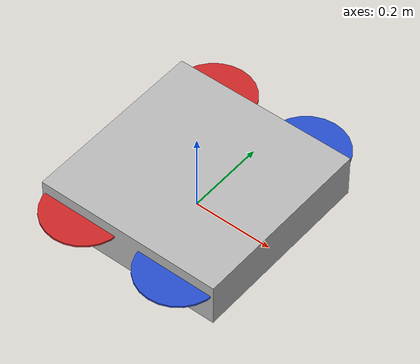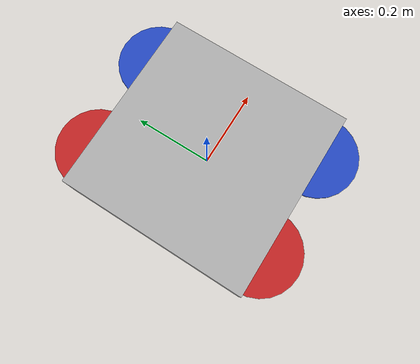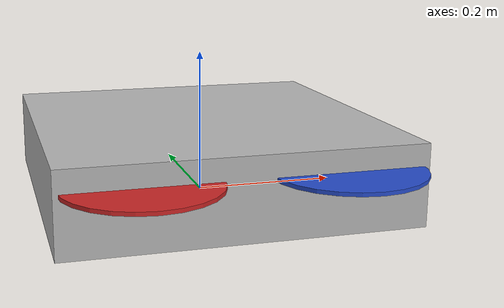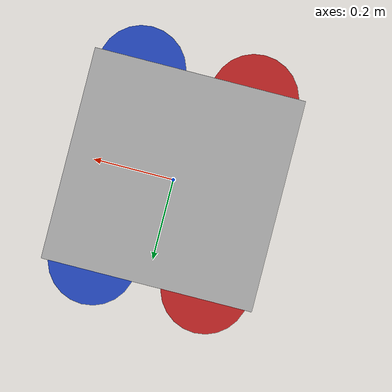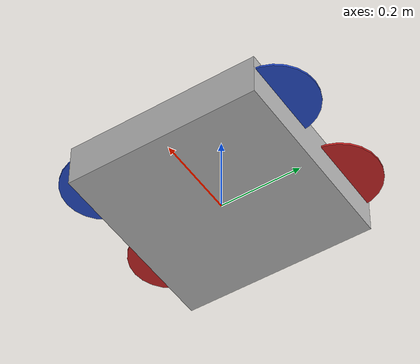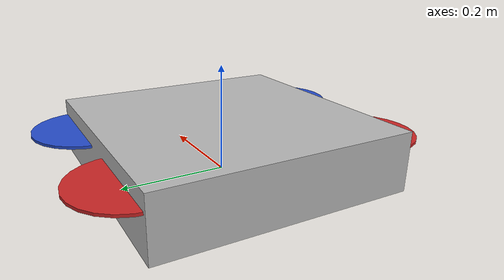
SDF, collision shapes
<?xml version="1.0"?>
<sdf version="1.6">
    <model name="X3">
        <pose>0 0 0.053302 0 0 0</pose>
        <link name="base_link">
            <pose frame="">0 0 0 0 -0 0</pose>
            <inertial>
                <pose frame="">0 0 0 0 -0 0</pose>
                <mass>1.5</mass>
                <inertia>
                  <ixx>0.025</ixx>
                  <ixy>0</ixy>
                  <ixz>0</ixz>
                  <iyy>0.009</iyy>
                  <iyz>0</iyz>
                  <izz>0.033</izz>
                </inertia>
            </inertial>
            <velocity_decay>
                <linear>0.10</linear>
                <angular>0.05</angular>
            </velocity_decay>
            <collision name="base_link_inertia_collision">
                <pose frame="">0 0 0 0 -0 0</pose>
                <geometry>
                    <box>
                        <size>0.47 0.47 0.11</size>
                    </box>
                </geometry>
            </collision>
            <visual name="base_link_inertia_visual">
                <pose frame="">0 0 0 0 -0 0</pose>
                <geometry>
                    <mesh>
                        <scale>1 1 1</scale>
                        <uri>model://X3/meshes/x3.dae</uri>
                    </mesh>
                </geometry>
            </visual>
            <visual name="marker_visual_1">
                <pose frame="">-0.07 0 0.065 0 -0 0</pose>
                <geometry>
                    <mesh>
                        <uri>model://X3/meshes/led.dae</uri>
                    </mesh>
                </geometry>
            </visual>
            <visual name="downward_flashlight_visual">
                <pose frame="">-0.043704 0 0.087914 -0.2 0.000158 -1.57002</pose>
                <geometry>
                    <mesh>
                        <scale>0.01 0.01 0.01</scale>
                        <uri>model://X3/meshes/spotlight.dae</uri>
                    </mesh>
                </geometry>
            </visual>
            <visual name="left_flashlight_visual">
                <pose frame="">-0.061985 0.060826 0.046102 0.06 -4.8e-05 -1.27</pose>
                <geometry>
                    <mesh>
                        <scale>0.01 0.01 0.01</scale>
                        <uri>model://X3/meshes/spotlight.dae</uri>
                    </mesh>
                </geometry>
            </visual>
            <visual name="marker_visual_2">
                <pose frame="">-0.08 0.037 0.04 -1.0472 -0 0.2</pose>
                <geometry>
                    <mesh>
                        <uri>model://X3/meshes/led.dae</uri>
                    </mesh>
                </geometry>
            </visual>
            <visual name="right_flashlight_visual">
                <pose frame="">-0.061985 -0.060826 0.046102 0.06 -4.8e-05 -1.87</pose>
                <geometry>
                    <mesh>
                        <scale>0.01 0.01 0.01</scale>
                        <uri>model://X3/meshes/spotlight.dae</uri>
                    </mesh>
                </geometry>
            </visual>
            <visual name="marker_visual_3">
                <pose frame="">-0.08 -0.035 0.04 1.0472 -0 -0.1</pose>
                <geometry>
                    <mesh>
                        <uri>model://X3/meshes/led.dae</uri>
                    </mesh>
                </geometry>
            </visual>

            <light name="right_light_source" type="spot">
                <pose frame="">0.01 -0.08 0.05 3.131592653589795 -1.5107899999999999 2.841592653589791</pose>
                <attenuation>
                    <range>15</range>
                    <linear>0</linear>
                    <constant>0.1</constant>
                    <quadratic>0.01</quadratic>
                </attenuation>
                <diffuse>0.8 0.8 0.5 1</diffuse>
                <specular>0.8 0.8 0.5 1</specular>
                <spot>
                    <inner_angle>1</inner_angle>
                    <outer_angle>1.1</outer_angle>
                    <falloff>1</falloff>
                </spot>
                <direction>0 0 -1</direction>
                <cast_shadows>1</cast_shadows>
            </light>
            <light name="downward_flashlight_source" type="spot">
                <pose frame="">0.03 0 0.075 -0.01 -1.3708026535897933 0</pose>
                <attenuation>
                    <range>15</range>
                    <linear>0</linear>
                    <constant>0.1</constant>
                    <quadratic>0.01</quadratic>
                </attenuation>
                <diffuse>0.8 0.8 0.5 1</diffuse>
                <specular>0.8 0.8 0.5 1</specular>
                <spot>
                    <inner_angle>1</inner_angle>
                    <outer_angle>1.1</outer_angle>
                    <falloff>1</falloff>
                </spot>
                <direction>0 0 -1</direction>
                <cast_shadows>1</cast_shadows>
            </light>
            <light name="left_flashlight_source" type="spot">
                <pose frame="">0.01 0.08 0.05 3.131592653589795 -1.5107899999999999 -2.841592653589791</pose>
                <attenuation>
                    <range>15</range>
                    <linear>0</linear>
                    <constant>0.1</constant>
                    <quadratic>0.01</quadratic>
                </attenuation>
                <diffuse>0.8 0.8 0.5 1</diffuse>
                <specular>0.8 0.8 0.5 1</specular>
                <spot>
                    <inner_angle>1</inner_angle>
                    <outer_angle>1.1</outer_angle>
                    <falloff>1</falloff>
                </spot>
                <direction>0 0 -1</direction>
                <cast_shadows>1</cast_shadows>
            </light>

            <sensor name="imu_sensor" type="imu">
                <always_on>1</always_on>
                <update_rate>250</update_rate>
                <imu>
                    <enable_orientation>0</enable_orientation>
                    <angular_velocity>
                        <x>
                            <noise type="gaussian">
                                <mean>0</mean>
                                <stddev>0.009</stddev>
                                <bias_mean>0.00075</bias_mean>
                                <bias_stddev>0.005</bias_stddev>
                                <dynamic_bias_stddev>0.00002</dynamic_bias_stddev>
				<dynamic_bias_correlation_time>400.0</dynamic_bias_correlation_time>
				<precision>0.00025</precision>
                            </noise>
                        </x>
                        <y>
                            <noise type="gaussian">
                                <mean>0</mean>
                                <stddev>0.009</stddev>
                                <bias_mean>0.00075</bias_mean>
                                <bias_stddev>0.005</bias_stddev>
                                <dynamic_bias_stddev>0.00002</dynamic_bias_stddev>
				<dynamic_bias_correlation_time>400.0</dynamic_bias_correlation_time>
				<precision>0.00025</precision>
                            </noise>
                        </y>
                        <z>
                            <noise type="gaussian">
                                <mean>0</mean>
                                <stddev>0.009</stddev>
                                <bias_mean>0.00075</bias_mean>
                                <bias_stddev>0.005</bias_stddev>
                                <dynamic_bias_stddev>0.00002</dynamic_bias_stddev>
				<dynamic_bias_correlation_time>400.0</dynamic_bias_correlation_time>
				<precision>0.00025</precision>
                            </noise>
                        </z>
                    </angular_velocity>
                    <linear_acceleration>
                        <x>
                            <noise type="gaussian">
                                <mean>0</mean>
                                <stddev>0.021</stddev>
                                <bias_mean>0.05</bias_mean>
                                <bias_stddev>0.0075</bias_stddev>
                                <dynamic_bias_stddev>0.000375</dynamic_bias_stddev>
				<dynamic_bias_correlation_time>175.0</dynamic_bias_correlation_time>
				<precision>0.005</precision>
                            </noise>
                        </x>
                        <y>
                            <noise type="gaussian">
                                <mean>0</mean>
                                <stddev>0.021</stddev>
                                <bias_mean>0.05</bias_mean>
                                <bias_stddev>0.0075</bias_stddev>
                                <dynamic_bias_stddev>0.000375</dynamic_bias_stddev>
				<dynamic_bias_correlation_time>175.0</dynamic_bias_correlation_time>
				<precision>0.005</precision>
                            </noise>
                        </y>
                        <z>
                            <noise type="gaussian">
                                <mean>0</mean>
                                <stddev>0.021</stddev>
                                <bias_mean>0.05</bias_mean>
                                <bias_stddev>0.0075</bias_stddev>
                                <dynamic_bias_stddev>0.000375</dynamic_bias_stddev>
				<dynamic_bias_correlation_time>175.0</dynamic_bias_correlation_time>
				<precision>0.005</precision>
                            </noise>
                        </z>
                    </linear_acceleration>
                </imu>

            </sensor>
            <sensor name="air_pressure" type="air_pressure">
                <always_on>1</always_on>
                <update_rate>20</update_rate>
                <air_pressure>
                    <reference_altitude>0</reference_altitude>
                    <noise type="gaussian">
                        <mean>0.00000008</mean>
                    </noise>
                </air_pressure>
            </sensor>
            <sensor name="magnetometer" type="magnetometer">
                <always_on>1</always_on>
                <update_rate>20</update_rate>
                <magnetometer>
                    <x>
                        <noise type="gaussian">
                            <mean>0.000000080</mean>
                            <bias_mean>0.000000400</bias_mean>
                        </noise>
                    </x>
                    <y>
                        <noise type="gaussian">
                            <mean>0.000000080</mean>
                            <bias_mean>0.000000400</bias_mean>
                        </noise>
                    </y>
                    <z>
                        <noise type="gaussian">
                            <mean>0.000000080</mean>
                            <bias_mean>0.000000400</bias_mean>
                        </noise>
                    </z>
                </magnetometer>
            </sensor>

            <visual name="camera_visual">
                <pose>0.1 0 0 0 0 0</pose>
                <geometry>
                    <box>
                        <size>0.02 0.02 0.02</size>
                    </box>
                </geometry>
            </visual>

            <sensor name="camera_front" type="rgbd_camera">
                <pose>0.1 0 0 0 0 0</pose>
                <always_on>1</always_on>
                <update_rate>20</update_rate>
                <camera name="camera_front">
                    <horizontal_fov>1.0472</horizontal_fov>
                    <lens>
                        <intrinsics>
                          <!-- fx = fy = width / ( 2 * tan (hfov / 2 ) ) -->
                          <fx>277.1</fx>
                          <fy>277.1</fy>
                          <!-- cx = ( width + 1 ) / 2 -->
                          <cx>160.5</cx>
                          <!-- cy = ( height + 1 ) / 2 -->
                          <cy>120.5</cy>
                          <s>0</s>
                        </intrinsics>
                    </lens>
                    <distortion>
                        <k1>0.0</k1>
                        <k2>0.0</k2>
                        <k3>0.0</k3>
                        <p1>0.0</p1>
                        <p2>0.0</p2>
                        <center>0.5 0.5</center>
                    </distortion>
                    <image>
                        <width>320</width>
                        <height>240</height>
                        <format>R8G8B8</format>
                    </image>
                    <clip>
                        <near>0.01</near>
                        <far>300</far>
                    </clip>
                    <depth_camera>
                      <clip>
                        <near>0.1</near>
                        <far>10</far>
                      </clip>
                    </depth_camera>
                    <noise>
                        <type>gaussian</type>
                        <mean>0</mean>
                        <stddev>0.007</stddev>
                    </noise>
                </camera>
            </sensor>

            <sensor name="fpv_camera" type="camera">
                <pose>0.12 0 0.03 0 0 0</pose>

                <always_on>1</always_on>
                <update_rate>60</update_rate>
                <visualize>true</visualize>
                <topic>/X3/fpv_camera/image</topic>

                <camera name="fpv_camera">
                    <horizontal_fov>1.745</horizontal_fov>

                    <image>
                        <width>960</width>
                        <height>540</height>
                        <format>R8G8B8</format>
                    </image>

                    <clip>
                        <near>0.02</near>
                        <far>300</far>
                    </clip>

                    <noise>
                        <type>gaussian</type>
                        <mean>0</mean>
                        <stddev>0.003</stddev>
                    </noise>
                </camera>
            </sensor>
        </link>
        <link name="rotor_0">
            <pose frame="">0.13 -0.22 0.023 0 -0 0</pose>
            <inertial>
                <pose frame="">0 0 0 0 -0 0</pose>
                <mass>0.005</mass>
                <inertia>
                    <ixx>9.75e-07</ixx>
                    <ixy>0</ixy>
                    <ixz>0</ixz>
                    <iyy>4.17041e-05</iyy>
                    <iyz>0</iyz>
                    <izz>4.26041e-05</izz>
                </inertia>
            </inertial>
            <collision name="rotor_0_collision">
                <pose frame="">0 0 0 0 -0 0</pose>
                <geometry>
                    <cylinder>
                        <length>0.005</length>
                        <radius>0.1</radius>
                    </cylinder>
                </geometry>
                <surface>
                    <contact>
                        <ode/>
                    </contact>
                    <friction>
                        <ode/>
                    </friction>
                </surface>
            </collision>
            <visual name="rotor_0_visual">
                <pose frame="">0 0 0 0 -0 0</pose>
                <geometry>
                    <mesh>
                        <scale>0.1 0.1 0.1</scale>
                        <uri>model://X3/meshes/propeller_ccw.dae</uri>
                    </mesh>
                </geometry>
                <material>
                    <diffuse>0 0 1 1</diffuse>
                    <script>
                        <name>Gazebo/Blue</name>
                        <uri>file://media/materials/scripts/gazebo.material</uri>
                    </script>
                </material>
                <cast_shadows>0</cast_shadows>
            </visual>
            <gravity>1</gravity>
            <velocity_decay/>
        </link>
        <joint name="rotor_0_joint" type="revolute">
            <child>rotor_0</child>
            <parent>base_link</parent>
            <axis>
                <xyz>0 0 1</xyz>
                <limit>
                    <lower>-1e+16</lower>
                    <upper>1e+16</upper>
                </limit>
                <dynamics>
                    <spring_reference>0</spring_reference>
                    <spring_stiffness>0</spring_stiffness>
                </dynamics>
                <use_parent_model_frame>1</use_parent_model_frame>
            </axis>
        </joint>
        <link name="rotor_1">
            <pose frame="">-0.13 0.22 0.023 0 -0 0</pose>
            <inertial>
                <pose frame="">0 0 0 0 -0 0</pose>
                <mass>0.005</mass>
                <inertia>
                    <ixx>9.75e-07</ixx>
                    <ixy>0</ixy>
                    <ixz>0</ixz>
                    <iyy>4.17041e-05</iyy>
                    <iyz>0</iyz>
                    <izz>4.26041e-05</izz>
                </inertia>
            </inertial>
            <collision name="rotor_1_collision">
                <pose frame="">0 0 0 0 -0 0</pose>
                <geometry>
                    <cylinder>
                        <length>0.005</length>
                        <radius>0.1</radius>
                    </cylinder>
                </geometry>
                <surface>
                    <contact>
                        <ode/>
                    </contact>
                    <friction>
                        <ode/>
                    </friction>
                </surface>
            </collision>
            <visual name="rotor_1_visual">
                <pose frame="">0 0 0 0 -0 0</pose>
                <geometry>
                    <mesh>
                        <scale>0.1 0.1 0.1</scale>
                        <uri>model://X3/meshes/propeller_ccw.dae</uri>
                    </mesh>
                </geometry>
                <material>
                    <diffuse>1 0 0 1</diffuse>
                    <script>
                        <name>Gazebo/Red</name>
                        <uri>file://media/materials/scripts/gazebo.material</uri>
                    </script>
                </material>
                <cast_shadows>0</cast_shadows>
            </visual>
            <gravity>1</gravity>
            <velocity_decay/>
        </link>
        <joint name="rotor_1_joint" type="revolute">
            <child>rotor_1</child>
            <parent>base_link</parent>
            <axis>
                <xyz>0 0 1</xyz>
                <limit>
                    <lower>-1e+16</lower>
                    <upper>1e+16</upper>
                </limit>
                <dynamics>
                    <spring_reference>0</spring_reference>
                    <spring_stiffness>0</spring_stiffness>
                </dynamics>
                <use_parent_model_frame>1</use_parent_model_frame>
            </axis>
        </joint>
        <link name="rotor_2">
            <pose frame="">0.13 0.22 0.023 0 -0 0</pose>
            <inertial>
                <pose frame="">0 0 0 0 -0 0</pose>
                <mass>0.005</mass>
                <inertia>
                    <ixx>9.75e-07</ixx>
                    <ixy>0</ixy>
                    <ixz>0</ixz>
                    <iyy>4.17041e-05</iyy>
                    <iyz>0</iyz>
                    <izz>4.26041e-05</izz>
                </inertia>
            </inertial>
            <collision name="rotor_2_collision">
                <pose frame="">0 0 0 0 -0 0</pose>
                <geometry>
                    <cylinder>
                        <length>0.005</length>
                        <radius>0.1</radius>
                    </cylinder>
                </geometry>
                <surface>
                    <contact>
                        <ode/>
                    </contact>
                    <friction>
                        <ode/>
                    </friction>
                </surface>
            </collision>
            <visual name="rotor_2_visual">
                <pose frame="">0 0 0 0 -0 0</pose>
                <geometry>
                    <mesh>
                        <scale>0.1 0.1 0.1</scale>
                        <uri>model://X3/meshes/propeller_cw.dae</uri>
                    </mesh>
                </geometry>
                <material>
                    <diffuse>0 0 1 1</diffuse>
                    <script>
                        <name>Gazebo/Blue</name>
                        <uri>file://media/materials/scripts/gazebo.material</uri>
                    </script>
                </material>
                <cast_shadows>0</cast_shadows>
            </visual>
            <gravity>1</gravity>
            <velocity_decay/>
        </link>
        <joint name="rotor_2_joint" type="revolute">
            <child>rotor_2</child>
            <parent>base_link</parent>
            <axis>
                <xyz>0 0 1</xyz>
                <limit>
                    <lower>-1e+16</lower>
                    <upper>1e+16</upper>
                </limit>
                <dynamics>
                    <spring_reference>0</spring_reference>
                    <spring_stiffness>0</spring_stiffness>
                </dynamics>
                <use_parent_model_frame>1</use_parent_model_frame>
            </axis>
        </joint>
        <link name="rotor_3">
            <pose frame="">-0.13 -0.22 0.023 0 -0 0</pose>
            <inertial>
                <pose frame="">0 0 0 0 -0 0</pose>
                <mass>0.005</mass>
                <inertia>
                    <ixx>9.75e-07</ixx>
                    <ixy>0</ixy>
                    <ixz>0</ixz>
                    <iyy>4.17041e-05</iyy>
                    <iyz>0</iyz>
                    <izz>4.26041e-05</izz>
                </inertia>
            </inertial>
            <collision name="rotor_3_collision">
                <pose frame="">0 0 0 0 -0 0</pose>
                <geometry>
                    <cylinder>
                        <length>0.005</length>
                        <radius>0.1</radius>
                    </cylinder>
                </geometry>
                <surface>
                    <contact>
                        <ode/>
                    </contact>
                    <friction>
                        <ode/>
                    </friction>
                </surface>
            </collision>
            <visual name="rotor_3_visual">
                <pose frame="">0 0 0 0 -0 0</pose>
                <geometry>
                    <mesh>
                        <scale>0.1 0.1 0.1</scale>
                        <uri>model://X3/meshes/propeller_cw.dae</uri>
                    </mesh>
                </geometry>
                <material>
                    <diffuse>1 0 0 1</diffuse>
                    <script>
                        <name>Gazebo/Red</name>
                        <uri>file://media/materials/scripts/gazebo.material</uri>
                    </script>
                </material>
                <cast_shadows>0</cast_shadows>
            </visual>
            <gravity>1</gravity>
            <velocity_decay/>
        </link>
        <joint name="rotor_3_joint" type="revolute">
            <child>rotor_3</child>
            <parent>base_link</parent>
            <axis>
                <xyz>0 0 1</xyz>
                <limit>
                    <lower>-1e+16</lower>
                    <upper>1e+16</upper>
                </limit>
                <dynamics>
                    <spring_reference>0</spring_reference>
                    <spring_stiffness>0</spring_stiffness>
                </dynamics>
                <use_parent_model_frame>1</use_parent_model_frame>
            </axis>
        </joint>
    </model>
</sdf>
